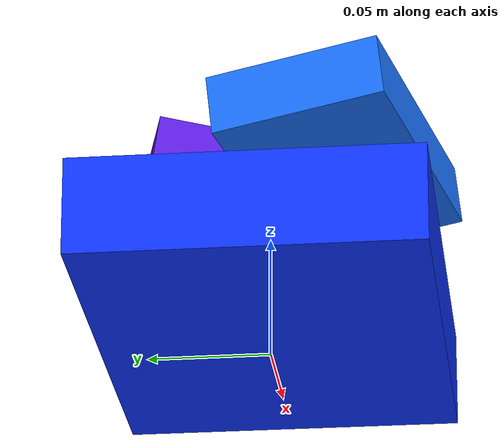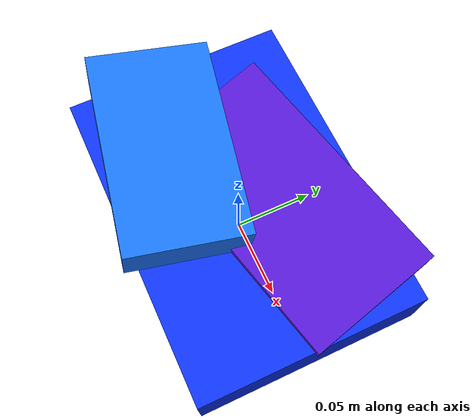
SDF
<?xml version="1.0"?>
<sdf version="1.6">
  <model name="laundry_cloth_bundle">
    <static>false</static>
    <link name="link">
      <inertial>
        <mass>0.12</mass>
        <inertia>
          <ixx>0.002</ixx><iyy>0.002</iyy><izz>0.002</izz>
          <ixy>0</ixy><ixz>0</ixz><iyz>0</iyz>
        </inertia>
      </inertial>

      <collision name="cloth_base">
        <pose>0 0 0.025 0 0 0</pose>
        <geometry><box><size>0.20 0.14 0.04</size></box></geometry>
      </collision>
      <visual name="cloth_base_v">
        <pose>0 0 0.025 0 0 0</pose>
        <geometry><box><size>0.20 0.14 0.04</size></box></geometry>
        <material><ambient>0.05 0.15 0.8 1</ambient><diffuse>0.05 0.20 1.0 1</diffuse></material>
      </visual>

      <collision name="cloth_fold_1">
        <pose>0.02 0.02 0.055 0.15 0.05 0.25</pose>
        <geometry><box><size>0.15 0.08 0.03</size></box></geometry>
      </collision>
      <visual name="cloth_fold_1_v">
        <pose>0.02 0.02 0.055 0.15 0.05 0.25</pose>
        <geometry><box><size>0.15 0.08 0.03</size></box></geometry>
        <material><ambient>0.25 0.05 0.65 1</ambient><diffuse>0.35 0.10 0.85 1</diffuse></material>
      </visual>

      <collision name="cloth_fold_2">
        <pose>-0.03 -0.03 0.075 -0.12 0.04 -0.20</pose>
        <geometry><box><size>0.12 0.07 0.025</size></box></geometry>
      </collision>
      <visual name="cloth_fold_2_v">
        <pose>-0.03 -0.03 0.075 -0.12 0.04 -0.20</pose>
        <geometry><box><size>0.12 0.07 0.025</size></box></geometry>
        <material><ambient>0.05 0.30 0.80 1</ambient><diffuse>0.10 0.45 1.00 1</diffuse></material>
      </visual>

    </link>
  </model>
</sdf>
